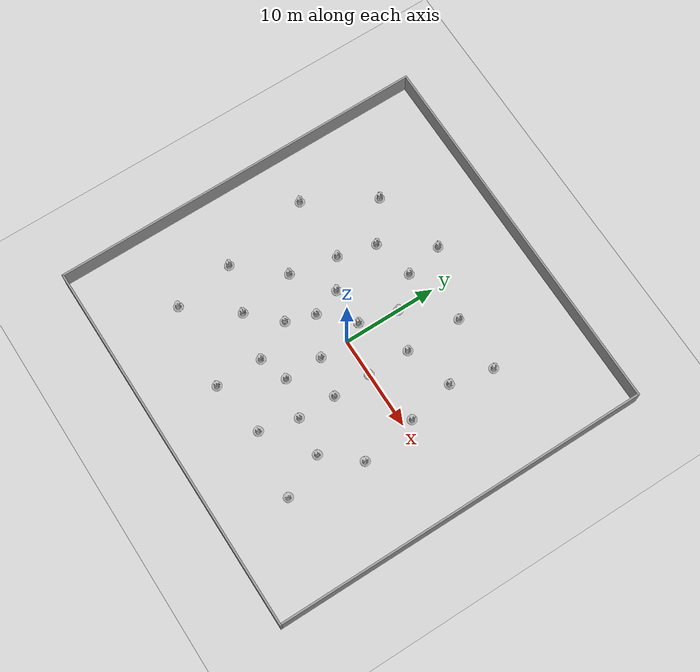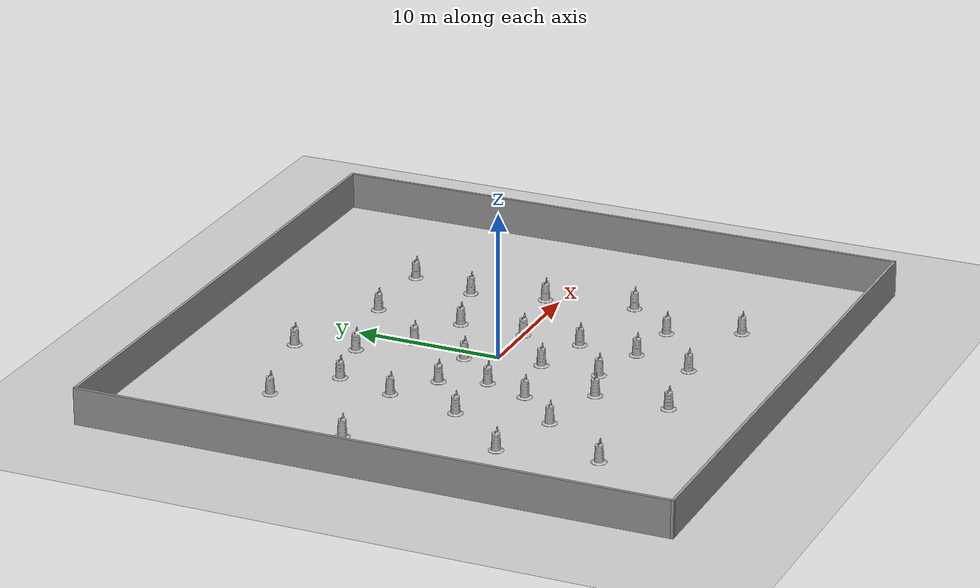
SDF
<sdf version="1.4">
 <world name="default">
  <light name="sun" type="directional">
   <pose>0 0 10 0 -0 0</pose>
   <diffuse>0.8 0.8 0.8 1</diffuse>
   <specular>0.2 0.2 0.2 1</specular>
   <attenuation>
    <range>1000</range>
    <constant>0.9</constant>
    <linear>0.01</linear>
    <quadratic>0.001</quadratic>
   </attenuation>
   <direction>-0.5 0.1 -0.9</direction>
  </light>
  <model name="ground_plane">
   <static>1</static>
   <link name="link">
    <collision name="collision">
     <geometry><plane><normal>0 0 1</normal><size>100 100</size></plane></geometry>
     <surface><friction><ode><mu>100</mu><mu2>50</mu2></ode></friction></surface>
    </collision>
    <visual name="visual">
     <cast_shadows>0</cast_shadows>
     <geometry><plane><normal>0 0 1</normal><size>100 100</size></plane></geometry>
     <material>
      <script><uri>file://media/materials/scripts/gazebo.material</uri><name>Gazebo/Grey</name></script>
     </material>
    </visual>
    <velocity_decay><linear>0</linear><angular>0</angular></velocity_decay>
   </link>
  </model>
  <physics type="ode">
   <max_step_size>0.001</max_step_size>
   <real_time_factor>1</real_time_factor>
   <real_time_update_rate>1000</real_time_update_rate>
   <gravity>0 0 -9.8</gravity>
  </physics>
  <scene><ambient>0.4 0.4 0.4 1</ambient><background>0.7 0.7 0.7 1</background><shadows>1</shadows></scene>
  <spherical_coordinates>
   <surface_model>EARTH_WGS84</surface_model>
   <latitude_deg>0</latitude_deg>
   <longitude_deg>0</longitude_deg>
   <elevation>0</elevation>
   <heading_deg>0</heading_deg>
  </spherical_coordinates>
  <model name="LargeRoom">
   <link name="Wall_0">
    <collision name="Wall_0_Collision">
     <geometry><box><size>40.2 0.2 2.5</size></box></geometry>
     <pose>0 0 1.25 0 -0 0</pose>
    </collision>
    <visual name="Wall_0_Visual">
     <pose>0 0 1.25 0 -0 0</pose>
     <geometry><box><size>40.2 0.2 2.5</size></box></geometry>
     <material>
      <script><uri>file://media/materials/scripts/gazebo.material</uri><name>Gazebo/Grey</name></script>
     </material>
    </visual>
    <velocity_decay><linear>0</linear><angular>0</angular></velocity_decay>
    <pose>-20 0 0 0 -0 1.5708</pose>
   </link>
   <link name="Wall_1">
    <collision name="Wall_1_Collision">
     <geometry><box><size>40.2 0.2 2.5</size></box></geometry>
     <pose>0 0 1.25 0 -0 0</pose>
    </collision>
    <visual name="Wall_1_Visual">
     <pose>0 0 1.25 0 -0 0</pose>
     <geometry><box><size>40.2 0.2 2.5</size></box></geometry>
     <material>
      <script><uri>file://media/materials/scripts/gazebo.material</uri><name>Gazebo/Grey</name></script>
     </material>
    </visual>
    <velocity_decay><linear>0</linear><angular>0</angular></velocity_decay>
    <pose>-0 20 0 0 -0 0</pose>
   </link>
   <link name="Wall_2">
    <collision name="Wall_2_Collision">
     <geometry><box><size>40.2 0.2 2.5</size></box></geometry>
     <pose>0 0 1.25 0 -0 0</pose>
    </collision>
    <visual name="Wall_2_Visual">
     <pose>0 0 1.25 0 -0 0</pose>
     <geometry><box><size>40.2 0.2 2.5</size></box></geometry>
     <material>
      <script><uri>file://media/materials/scripts/gazebo.material</uri><name>Gazebo/Grey</name></script>
     </material>
    </visual>
    <velocity_decay><linear>0</linear><angular>0</angular></velocity_decay>
    <pose>20 -0 0 0 0 -1.5708</pose>
   </link>
   <link name="Wall_3">
    <collision name="Wall_3_Collision">
     <geometry><box><size>40.2 0.2 2.5</size></box></geometry>
     <pose>0 0 1.25 0 -0 0</pose>
    </collision>
    <visual name="Wall_3_Visual">
     <pose>0 0 1.25 0 -0 0</pose>
     <geometry><box><size>40.2 0.2 2.5</size></box></geometry>
     <material>
      <script><uri>file://media/materials/scripts/gazebo.material</uri><name>Gazebo/Grey</name></script>
     </material>
    </visual>
    <velocity_decay><linear>0</linear><angular>0</angular></velocity_decay>
    <pose>-0 -20 0 0 -0 3.14159</pose>
   </link>
   <static>1</static>
  </model>
  <model name="Construction Barrel">
   <link name="link">
    <inertial>
     <pose>0 0 0.4 0 -0 0</pose>
     <mass>500</mass>
     <inertia><ixx>51.2096</ixx><iyy>51.2096</iyy><izz>25</izz><ixy>0</ixy><ixz>0</ixz><iyz>0</iyz></inertia>
    </inertial>
    <collision name="collision">
     <geometry><mesh><uri>model://construction_barrel/meshes/construction_barrel.dae</uri></mesh></geometry>
    </collision>
    <visual name="visual">
     <geometry><mesh><uri>model://construction_barrel/meshes/construction_barrel.dae</uri></mesh></geometry>
    </visual>
    <velocity_decay><linear>0</linear><angular>0</angular></velocity_decay>
   </link>
   <pose>7.99986 -8.48625 1e-06 -1e-06 -2e-06 -0.001937</pose>
   <static>0</static>
  </model>
  <model name="Construction Barrel_0">
   <link name="link">
    <inertial>
     <pose>0 0 0.4 0 -0 0</pose>
     <mass>500</mass>
     <inertia><ixx>51.2096</ixx><iyy>51.2096</iyy><izz>25</izz><ixy>0</ixy><ixz>0</ixz><iyz>0</iyz></inertia>
    </inertial>
    <collision name="collision">
     <geometry><mesh><uri>model://construction_barrel/meshes/construction_barrel.dae</uri></mesh></geometry>
    </collision>
    <visual name="visual">
     <geometry><mesh><uri>model://construction_barrel/meshes/construction_barrel.dae</uri></mesh></geometry>
    </visual>
    <velocity_decay><linear>0</linear><angular>0</angular></velocity_decay>
   </link>
   <pose>9.99987 -12.999 1e-06 -1e-06 -2e-06 -0.001874</pose>
   <static>0</static>
  </model>
  <model name="Construction Barrel_1">
   <link name="link">
    <inertial>
     <pose>0 0 0.4 0 -0 0</pose>
     <mass>500</mass>
     <inertia><ixx>51.2096</ixx><iyy>51.2096</iyy><izz>25</izz><ixy>0</ixy><ixz>0</ixz><iyz>0</iyz></inertia>
    </inertial>
    <collision name="collision">
     <geometry><mesh><uri>model://construction_barrel/meshes/construction_barrel.dae</uri></mesh></geometry>
    </collision>
    <visual name="visual">
     <geometry><mesh><uri>model://construction_barrel/meshes/construction_barrel.dae</uri></mesh></geometry>
    </visual>
    <velocity_decay><linear>0</linear><angular>0</angular></velocity_decay>
   </link>
   <pose>10.9999 -4.99899 1e-06 -1e-06 -2e-06 -0.001811</pose>
   <static>0</static>
  </model>
  <model name="Construction Barrel_2">
   <link name="link">
    <inertial>
     <pose>0 0 0.4 0 -0 0</pose>
     <mass>500</mass>
     <inertia><ixx>51.2096</ixx><iyy>51.2096</iyy><izz>25</izz><ixy>0</ixy><ixz>0</ixz><iyz>0</iyz></inertia>
    </inertial>
    <collision name="collision">
     <geometry><mesh><uri>model://construction_barrel/meshes/construction_barrel.dae</uri></mesh></geometry>
    </collision>
    <visual name="visual">
     <geometry><mesh><uri>model://construction_barrel/meshes/construction_barrel.dae</uri></mesh></geometry>
    </visual>
    <velocity_decay><linear>0</linear><angular>0</angular></velocity_decay>
   </link>
   <pose>3.99988 0.000975 1e-06 -1e-06 -2e-06 -0.001748</pose>
   <static>0</static>
  </model>
  <model name="Construction Barrel_3">
   <link name="link">
    <inertial>
     <pose>0 0 0.4 0 -0 0</pose>
     <mass>500</mass>
     <inertia><ixx>51.2096</ixx><iyy>51.2096</iyy><izz>25</izz><ixy>0</ixy><ixz>0</ixz><iyz>0</iyz></inertia>
    </inertial>
    <collision name="collision">
     <geometry><mesh><uri>model://construction_barrel/meshes/construction_barrel.dae</uri></mesh></geometry>
    </collision>
    <visual name="visual">
     <geometry><mesh><uri>model://construction_barrel/meshes/construction_barrel.dae</uri></mesh></geometry>
    </visual>
    <velocity_decay><linear>0</linear><angular>0</angular></velocity_decay>
   </link>
   <pose>3.99988 -7.99906 1e-06 -1e-06 -2e-06 -0.001685</pose>
   <static>0</static>
  </model>
  <model name="Construction Barrel_4">
   <link name="link">
    <inertial>
     <pose>0 0 0.4 0 -0 0</pose>
     <mass>500</mass>
     <inertia><ixx>51.2096</ixx><iyy>51.2096</iyy><izz>25</izz><ixy>0</ixy><ixz>0</ixz><iyz>0</iyz></inertia>
    </inertial>
    <collision name="collision">
     <geometry><mesh><uri>model://construction_barrel/meshes/construction_barrel.dae</uri></mesh></geometry>
    </collision>
    <visual name="visual">
     <geometry><mesh><uri>model://construction_barrel/meshes/construction_barrel.dae</uri></mesh></geometry>
    </visual>
    <velocity_decay><linear>0</linear><angular>0</angular></velocity_decay>
   </link>
   <pose>3.99988 -3.9991 1e-06 -1e-06 -2e-06 -0.001622</pose>
   <static>0</static>
  </model>
  <model name="Construction Barrel_5">
   <link name="link">
    <inertial>
     <pose>0 0 0.4 0 -0 0</pose>
     <mass>500</mass>
     <inertia><ixx>51.2096</ixx><iyy>51.2096</iyy><izz>25</izz><ixy>0</ixy><ixz>0</ixz><iyz>0</iyz></inertia>
    </inertial>
    <collision name="collision">
     <geometry><mesh><uri>model://construction_barrel/meshes/construction_barrel.dae</uri></mesh></geometry>
    </collision>
    <visual name="visual">
     <geometry><mesh><uri>model://construction_barrel/meshes/construction_barrel.dae</uri></mesh></geometry>
    </visual>
    <velocity_decay><linear>0</linear><angular>0</angular></velocity_decay>
   </link>
   <pose>-0.000111 -6.99913 1e-06 -1e-06 -2e-06 -0.001559</pose>
   <static>0</static>
  </model>
  <model name="Construction Barrel_6">
   <link name="link">
    <inertial>
     <pose>0 0 0.4 0 -0 0</pose>
     <mass>500</mass>
     <inertia><ixx>51.2096</ixx><iyy>51.2096</iyy><izz>25</izz><ixy>0</ixy><ixz>0</ixz><iyz>0</iyz></inertia>
    </inertial>
    <collision name="collision">
     <geometry><mesh><uri>model://construction_barrel/meshes/construction_barrel.dae</uri></mesh></geometry>
    </collision>
    <visual name="visual">
     <geometry><mesh><uri>model://construction_barrel/meshes/construction_barrel.dae</uri></mesh></geometry>
    </visual>
    <velocity_decay><linear>0</linear><angular>0</angular></velocity_decay>
   </link>
   <pose>-0.000106 -2.99917 1e-06 -1e-06 -2e-06 -0.001496</pose>
   <static>0</static>
  </model>
  <model name="Construction Barrel_7">
   <link name="link">
    <inertial>
     <pose>0 0 0.4 0 -0 0</pose>
     <mass>500</mass>
     <inertia><ixx>51.2096</ixx><iyy>51.2096</iyy><izz>25</izz><ixy>0</ixy><ixz>0</ixz><iyz>0</iyz></inertia>
    </inertial>
    <collision name="collision">
     <geometry><mesh><uri>model://construction_barrel/meshes/construction_barrel.dae</uri></mesh></geometry>
    </collision>
    <visual name="visual">
     <geometry><mesh><uri>model://construction_barrel/meshes/construction_barrel.dae</uri></mesh></geometry>
    </visual>
    <velocity_decay><linear>0</linear><angular>0</angular></velocity_decay>
   </link>
   <pose>-5.0001 -3.9992 1e-06 -1e-06 -2e-06 -0.001433</pose>
   <static>0</static>
  </model>
  <model name="Construction Barrel_8">
   <link name="link">
    <inertial>
     <pose>0 0 0.4 0 -0 0</pose>
     <mass>500</mass>
     <inertia><ixx>51.2096</ixx><iyy>51.2096</iyy><izz>25</izz><ixy>0</ixy><ixz>0</ixz><iyz>0</iyz></inertia>
    </inertial>
    <collision name="collision">
     <geometry><mesh><uri>model://construction_barrel/meshes/construction_barrel.dae</uri></mesh></geometry>
    </collision>
    <visual name="visual">
     <geometry><mesh><uri>model://construction_barrel/meshes/construction_barrel.dae</uri></mesh></geometry>
    </visual>
    <velocity_decay><linear>0</linear><angular>0</angular></velocity_decay>
   </link>
   <pose>-9.0001 -0.999236 1e-06 -1e-06 -2e-06 -0.00137</pose>
   <static>0</static>
  </model>
  <model name="Construction Barrel_9">
   <link name="link">
    <inertial>
     <pose>0 0 0.4 0 -0 0</pose>
     <mass>500</mass>
     <inertia><ixx>51.2096</ixx><iyy>51.2096</iyy><izz>25</izz><ixy>0</ixy><ixz>0</ixz><iyz>0</iyz></inertia>
    </inertial>
    <collision name="collision">
     <geometry><mesh><uri>model://construction_barrel/meshes/construction_barrel.dae</uri></mesh></geometry>
    </collision>
    <visual name="visual">
     <geometry><mesh><uri>model://construction_barrel/meshes/construction_barrel.dae</uri></mesh></geometry>
    </visual>
    <velocity_decay><linear>0</linear><angular>0</angular></velocity_decay>
   </link>
   <pose>-5.00009 2.00073 1e-06 -1e-06 -2e-06 -0.001307</pose>
   <static>0</static>
  </model>
  <model name="Construction Barrel_10">
   <link name="link">
    <inertial>
     <pose>0 0 0.4 0 -0 0</pose>
     <mass>500</mass>
     <inertia><ixx>51.2096</ixx><iyy>51.2096</iyy><izz>25</izz><ixy>0</ixy><ixz>0</ixz><iyz>0</iyz></inertia>
    </inertial>
    <collision name="collision">
     <geometry><mesh><uri>model://construction_barrel/meshes/construction_barrel.dae</uri></mesh></geometry>
    </collision>
    <visual name="visual">
     <geometry><mesh><uri>model://construction_barrel/meshes/construction_barrel.dae</uri></mesh></geometry>
    </visual>
    <velocity_decay><linear>0</linear><angular>0</angular></velocity_decay>
   </link>
   <pose>-1.00009 2.00069 1e-06 -1e-06 -2e-06 -0.001244</pose>
   <static>0</static>
  </model>
  <model name="Construction Barrel_11">
   <link name="link">
    <inertial>
     <pose>0 0 0.4 0 -0 0</pose>
     <mass>500</mass>
     <inertia><ixx>51.2096</ixx><iyy>51.2096</iyy><izz>25</izz><ixy>0</ixy><ixz>0</ixz><iyz>0</iyz></inertia>
    </inertial>
    <collision name="collision">
     <geometry><mesh><uri>model://construction_barrel/meshes/construction_barrel.dae</uri></mesh></geometry>
    </collision>
    <visual name="visual">
     <geometry><mesh><uri>model://construction_barrel/meshes/construction_barrel.dae</uri></mesh></geometry>
    </visual>
    <velocity_decay><linear>0</linear><angular>0</angular></velocity_decay>
   </link>
   <pose>2.99992 -11.9993 1e-06 -1e-06 -2e-06 -0.001181</pose>
   <static>0</static>
  </model>
  <model name="Construction Barrel_12">
   <link name="link">
    <inertial>
     <pose>0 0 0.4 0 -0 0</pose>
     <mass>500</mass>
     <inertia><ixx>51.2096</ixx><iyy>51.2096</iyy><izz>25</izz><ixy>0</ixy><ixz>0</ixz><iyz>0</iyz></inertia>
    </inertial>
    <collision name="collision">
     <geometry><mesh><uri>model://construction_barrel/meshes/construction_barrel.dae</uri></mesh></geometry>
    </collision>
    <visual name="visual">
     <geometry><mesh><uri>model://construction_barrel/meshes/construction_barrel.dae</uri></mesh></geometry>
    </visual>
    <velocity_decay><linear>0</linear><angular>0</angular></velocity_decay>
   </link>
   <pose>9.99992 1.00062 1e-06 -1e-06 -2e-06 -0.001118</pose>
   <static>0</static>
  </model>
  <model name="Construction Barrel_13">
   <link name="link">
    <inertial>
     <pose>0 0 0.4 0 -0 0</pose>
     <mass>500</mass>
     <inertia><ixx>51.2096</ixx><iyy>51.2096</iyy><izz>25</izz><ixy>0</ixy><ixz>0</ixz><iyz>0</iyz></inertia>
    </inertial>
    <collision name="collision">
     <geometry><mesh><uri>model://construction_barrel/meshes/construction_barrel.dae</uri></mesh></geometry>
    </collision>
    <visual name="visual">
     <geometry><mesh><uri>model://construction_barrel/meshes/construction_barrel.dae</uri></mesh></geometry>
    </visual>
    <velocity_decay><linear>0</linear><angular>0</angular></velocity_decay>
   </link>
   <pose>3.99993 4.48964 1e-06 -1e-06 -2e-06 -0.001055</pose>
   <static>0</static>
  </model>
  <model name="Construction Barrel_14">
   <link name="link">
    <inertial>
     <pose>0 0 0.4 0 -0 0</pose>
     <mass>500</mass>
     <inertia><ixx>51.2096</ixx><iyy>51.2096</iyy><izz>25</izz><ixy>0</ixy><ixz>0</ixz><iyz>0</iyz></inertia>
    </inertial>
    <collision name="collision">
     <geometry><mesh><uri>model://construction_barrel/meshes/construction_barrel.dae</uri></mesh></geometry>
    </collision>
    <visual name="visual">
     <geometry><mesh><uri>model://construction_barrel/meshes/construction_barrel.dae</uri></mesh></geometry>
    </visual>
    <velocity_decay><linear>0</linear><angular>0</angular></velocity_decay>
   </link>
   <pose>8.99993 6.00055 1e-06 -1e-06 -2e-06 -0.000992</pose>
   <static>0</static>
  </model>
  <model name="Construction Barrel_15">
   <link name="link">
    <inertial>
     <pose>0 0 0.4 0 -0 0</pose>
     <mass>500</mass>
     <inertia><ixx>51.2096</ixx><iyy>51.2096</iyy><izz>25</izz><ixy>0</ixy><ixz>0</ixz><iyz>0</iyz></inertia>
    </inertial>
    <collision name="collision">
     <geometry><mesh><uri>model://construction_barrel/meshes/construction_barrel.dae</uri></mesh></geometry>
    </collision>
    <visual name="visual">
     <geometry><mesh><uri>model://construction_barrel/meshes/construction_barrel.dae</uri></mesh></geometry>
    </visual>
    <velocity_decay><linear>0</linear><angular>0</angular></velocity_decay>
   </link>
   <pose>-6.6e-05 6.00052 1e-06 -1e-06 -2e-06 -0.000929</pose>
   <static>0</static>
  </model>
  <model name="Construction Barrel_16">
   <link name="link">
    <inertial>
     <pose>0 0 0.4 0 -0 0</pose>
     <mass>500</mass>
     <inertia><ixx>51.2096</ixx><iyy>51.2096</iyy><izz>25</izz><ixy>0</ixy><ixz>0</ixz><iyz>0</iyz></inertia>
    </inertial>
    <collision name="collision">
     <geometry><mesh><uri>model://construction_barrel/meshes/construction_barrel.dae</uri></mesh></geometry>
    </collision>
    <visual name="visual">
     <geometry><mesh><uri>model://construction_barrel/meshes/construction_barrel.dae</uri></mesh></geometry>
    </visual>
    <velocity_decay><linear>0</linear><angular>0</angular></velocity_decay>
   </link>
   <pose>-4.00006 -0.999517 1e-06 -1e-06 -2e-06 -0.000866</pose>
   <static>0</static>
  </model>
  <model name="Construction Barrel_17">
   <link name="link">
    <inertial>
     <pose>0 0 0.4 0 -0 0</pose>
     <mass>500</mass>
     <inertia><ixx>51.2096</ixx><iyy>51.2096</iyy><izz>25</izz><ixy>0</ixy><ixz>0</ixz><iyz>0</iyz></inertia>
    </inertial>
    <collision name="collision">
     <geometry><mesh><uri>model://construction_barrel/meshes/construction_barrel.dae</uri></mesh></geometry>
    </collision>
    <visual name="visual">
     <geometry><mesh><uri>model://construction_barrel/meshes/construction_barrel.dae</uri></mesh></geometry>
    </visual>
    <velocity_decay><linear>0</linear><angular>0</angular></velocity_decay>
   </link>
   <pose>-8.00006 4.00045 1e-06 -1e-06 -2e-06 -0.000803</pose>
   <static>0</static>
  </model>
  <model name="Construction Barrel_18">
   <link name="link">
    <inertial>
     <pose>0 0 0.4 0 -0 0</pose>
     <mass>500</mass>
     <inertia><ixx>51.2096</ixx><iyy>51.2096</iyy><izz>25</izz><ixy>0</ixy><ixz>0</ixz><iyz>0</iyz></inertia>
    </inertial>
    <collision name="collision">
     <geometry><mesh><uri>model://construction_barrel/meshes/construction_barrel.dae</uri></mesh></geometry>
    </collision>
    <visual name="visual">
     <geometry><mesh><uri>model://construction_barrel/meshes/construction_barrel.dae</uri></mesh></geometry>
    </visual>
    <velocity_decay><linear>0</linear><angular>0</angular></velocity_decay>
   </link>
   <pose>-7.00005 8.00041 1e-06 -1e-06 -2e-06 -0.00074</pose>
   <static>0</static>
  </model>
  <model name="Construction Barrel_19">
   <link name="link">
    <inertial>
     <pose>0 0 0.4 0 -0 0</pose>
     <mass>500</mass>
     <inertia><ixx>51.2096</ixx><iyy>51.2096</iyy><izz>25</izz><ixy>0</ixy><ixz>0</ixz><iyz>0</iyz></inertia>
    </inertial>
    <collision name="collision">
     <geometry><mesh><uri>model://construction_barrel/meshes/construction_barrel.dae</uri></mesh></geometry>
    </collision>
    <visual name="visual">
     <geometry><mesh><uri>model://construction_barrel/meshes/construction_barrel.dae</uri></mesh></geometry>
    </visual>
    <velocity_decay><linear>0</linear><angular>0</angular></velocity_decay>
   </link>
   <pose>-11 11.0004 1e-06 -1e-06 -2e-06 -0.000677</pose>
   <static>0</static>
  </model>
  <model name="Construction Barrel_20">
   <link name="link">
    <inertial>
     <pose>0 0 0.4 0 -0 0</pose>
     <mass>500</mass>
     <inertia><ixx>51.2096</ixx><iyy>51.2096</iyy><izz>25</izz><ixy>0</ixy><ixz>0</ixz><iyz>0</iyz></inertia>
    </inertial>
    <collision name="collision">
     <geometry><mesh><uri>model://construction_barrel/meshes/construction_barrel.dae</uri></mesh></geometry>
    </collision>
    <visual name="visual">
     <geometry><mesh><uri>model://construction_barrel/meshes/construction_barrel.dae</uri></mesh></geometry>
    </visual>
    <velocity_decay><linear>0</linear><angular>0</angular></velocity_decay>
   </link>
   <pose>-2.57419 9.00034 1e-06 -1e-06 -2e-06 -0.000614</pose>
   <static>0</static>
  </model>
  <model name="Construction Barrel_21">
   <link name="link">
    <inertial>
     <pose>0 0 0.4 0 -0 0</pose>
     <mass>500</mass>
     <inertia><ixx>51.2096</ixx><iyy>51.2096</iyy><izz>25</izz><ixy>0</ixy><ixz>0</ixz><iyz>0</iyz></inertia>
    </inertial>
    <collision name="collision">
     <geometry><mesh><uri>model://construction_barrel/meshes/construction_barrel.dae</uri></mesh></geometry>
    </collision>
    <visual name="visual">
     <geometry><mesh><uri>model://construction_barrel/meshes/construction_barrel.dae</uri></mesh></geometry>
    </visual>
    <velocity_decay><linear>0</linear><angular>0</angular></velocity_decay>
   </link>
   <pose>3.99996 10.4724 1e-06 -1e-06 -2e-06 -0.000551</pose>
   <static>0</static>
  </model>
  <model name="Construction Barrel_22">
   <link name="link">
    <inertial>
     <pose>0 0 0.4 0 -0 0</pose>
     <mass>500</mass>
     <inertia><ixx>51.2096</ixx><iyy>51.2096</iyy><izz>25</izz><ixy>0</ixy><ixz>0</ixz><iyz>0</iyz></inertia>
    </inertial>
    <collision name="collision">
     <geometry><mesh><uri>model://construction_barrel/meshes/construction_barrel.dae</uri></mesh></geometry>
    </collision>
    <visual name="visual">
     <geometry><mesh><uri>model://construction_barrel/meshes/construction_barrel.dae</uri></mesh></geometry>
    </visual>
    <velocity_decay><linear>0</linear><angular>0</angular></velocity_decay>
   </link>
   <pose>9.99997 10.509 1e-06 -1e-06 -2e-06 -0.000488</pose>
   <static>0</static>
  </model>
  <model name="Construction Barrel_23">
   <link name="link">
    <inertial>
     <pose>0 0 0.4 0 -0 0</pose>
     <mass>500</mass>
     <inertia><ixx>51.2096</ixx><iyy>51.2096</iyy><izz>25</izz><ixy>0</ixy><ixz>0</ixz><iyz>0</iyz></inertia>
    </inertial>
    <collision name="collision">
     <geometry><mesh><uri>model://construction_barrel/meshes/construction_barrel.dae</uri></mesh></geometry>
    </collision>
    <visual name="visual">
     <geometry><mesh><uri>model://construction_barrel/meshes/construction_barrel.dae</uri></mesh></geometry>
    </visual>
    <velocity_decay><linear>0</linear><angular>0</angular></velocity_decay>
   </link>
   <pose>-3.43131 13.0002 1e-06 -1e-06 -2e-06 -0.000425</pose>
   <static>0</static>
  </model>
  <model name="Construction Barrel_24">
   <link name="link">
    <inertial>
     <pose>0 0 0.4 0 -0 0</pose>
     <mass>500</mass>
     <inertia><ixx>51.2096</ixx><iyy>51.2096</iyy><izz>25</izz><ixy>0</ixy><ixz>0</ixz><iyz>0</iyz></inertia>
    </inertial>
    <collision name="collision">
     <geometry><mesh><uri>model://construction_barrel/meshes/construction_barrel.dae</uri></mesh></geometry>
    </collision>
    <visual name="visual">
     <geometry><mesh><uri>model://construction_barrel/meshes/construction_barrel.dae</uri></mesh></geometry>
    </visual>
    <velocity_decay><linear>0</linear><angular>0</angular></velocity_decay>
   </link>
   <pose>-15 4.0002 -2e-06 3e-06 3e-06 -0.000361</pose>
   <static>0</static>
  </model>
  <model name="Construction Barrel_25">
   <link name="link">
    <inertial>
     <pose>0 0 0.4 0 -0 0</pose>
     <mass>500</mass>
     <inertia><ixx>51.2096</ixx><iyy>51.2096</iyy><izz>25</izz><ixy>0</ixy><ixz>0</ixz><iyz>0</iyz></inertia>
    </inertial>
    <collision name="collision">
     <geometry><mesh><uri>model://construction_barrel/meshes/construction_barrel.dae</uri></mesh></geometry>
    </collision>
    <visual name="visual">
     <geometry><mesh><uri>model://construction_barrel/meshes/construction_barrel.dae</uri></mesh></geometry>
    </visual>
    <velocity_decay><linear>0</linear><angular>0</angular></velocity_decay>
   </link>
   <pose>-3.00002 -12.9998 -4e-06 2e-06 -7e-06 -0.000303</pose>
   <static>0</static>
  </model>
  <model name="Construction Barrel_26">
   <link name="link">
    <inertial>
     <pose>0 0 0.4 0 -0 0</pose>
     <mass>500</mass>
     <inertia><ixx>51.2096</ixx><iyy>51.2096</iyy><izz>25</izz><ixy>0</ixy><ixz>0</ixz><iyz>0</iyz></inertia>
    </inertial>
    <collision name="collision">
     <geometry><mesh><uri>model://construction_barrel/meshes/construction_barrel.dae</uri></mesh></geometry>
    </collision>
    <visual name="visual">
     <geometry><mesh><uri>model://construction_barrel/meshes/construction_barrel.dae</uri></mesh></geometry>
    </visual>
    <velocity_decay><linear>0</linear><angular>0</angular></velocity_decay>
   </link>
   <pose>-3.00002 -7.99986 -2e-06 1e-06 -4e-06 -0.000244</pose>
   <static>0</static>
  </model>
  <model name="Construction Barrel_27">
   <link name="link">
    <inertial>
     <pose>0 0 0.4 0 -0 0</pose>
     <mass>500</mass>
     <inertia><ixx>51.2096</ixx><iyy>51.2096</iyy><izz>25</izz><ixy>0</ixy><ixz>0</ixz><iyz>0</iyz></inertia>
    </inertial>
    <collision name="collision">
     <geometry><mesh><uri>model://construction_barrel/meshes/construction_barrel.dae</uri></mesh></geometry>
    </collision>
    <visual name="visual">
     <geometry><mesh><uri>model://construction_barrel/meshes/construction_barrel.dae</uri></mesh></geometry>
    </visual>
    <velocity_decay><linear>0</linear><angular>0</angular></velocity_decay>
   </link>
   <pose>-8.00001 -6.9999 -4e-06 9e-06 5e-06 -0.000185</pose>
   <static>0</static>
  </model>
  <model name="Construction Barrel_28">
   <link name="link">
    <inertial>
     <pose>0 0 0.4 0 -0 0</pose>
     <mass>500</mass>
     <inertia><ixx>51.2096</ixx><iyy>51.2096</iyy><izz>25</izz><ixy>0</ixy><ixz>0</ixz><iyz>0</iyz></inertia>
    </inertial>
    <collision name="collision">
     <geometry><mesh><uri>model://construction_barrel/meshes/construction_barrel.dae</uri></mesh></geometry>
    </collision>
    <visual name="visual">
     <geometry><mesh><uri>model://construction_barrel/meshes/construction_barrel.dae</uri></mesh></geometry>
    </visual>
    <velocity_decay><linear>0</linear><angular>0</angular></velocity_decay>
   </link>
   <pose>-13 -5.54386 -0 0 -0 -0.000121</pose>
   <static>0</static>
  </model>
  <model name="Construction Barrel_29">
   <link name="link">
    <inertial>
     <pose>0 0 0.4 0 -0 0</pose>
     <mass>500</mass>
     <inertia><ixx>51.2096</ixx><iyy>51.2096</iyy><izz>25</izz><ixy>0</ixy><ixz>0</ixz><iyz>0</iyz></inertia>
    </inertial>
    <collision name="collision">
     <geometry><mesh><uri>model://construction_barrel/meshes/construction_barrel.dae</uri></mesh></geometry>
    </collision>
    <visual name="visual">
     <geometry><mesh><uri>model://construction_barrel/meshes/construction_barrel.dae</uri></mesh></geometry>
    </visual>
    <velocity_decay><linear>0</linear><angular>0</angular></velocity_decay>
   </link>
   <pose>-12 -12 -0 0 -0 -6.4e-05</pose>
   <static>0</static>
  </model>
 </world>
</sdf>
